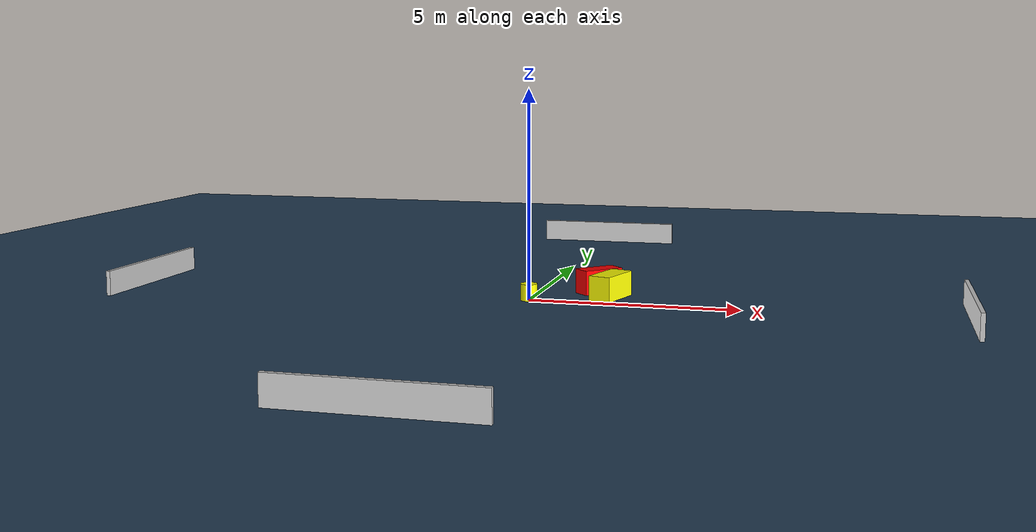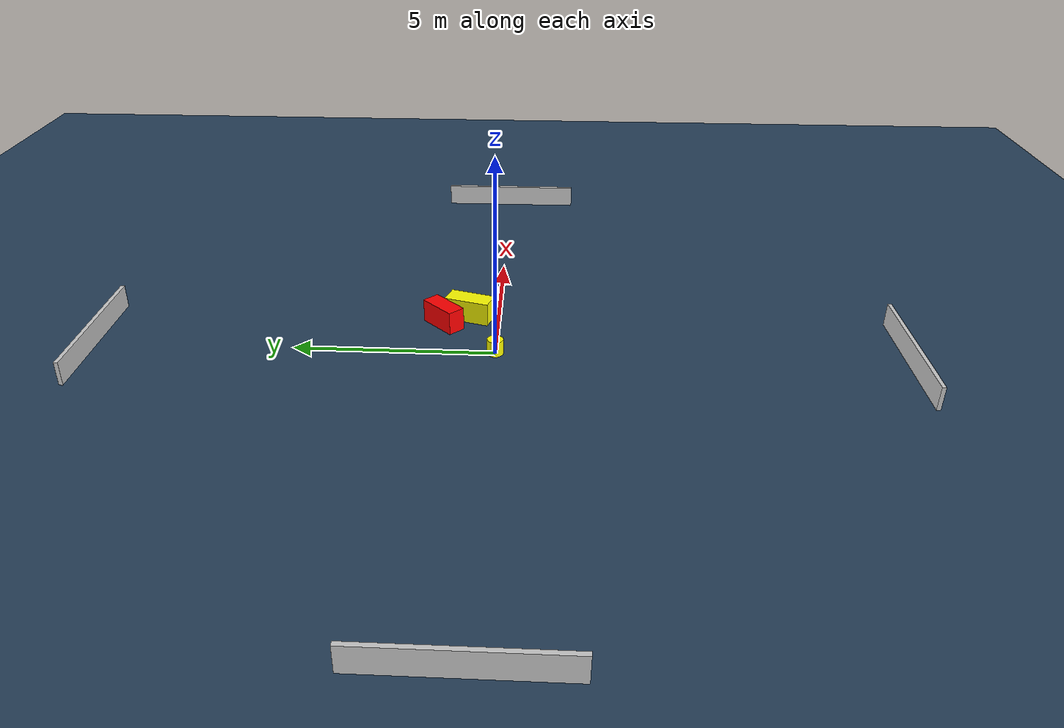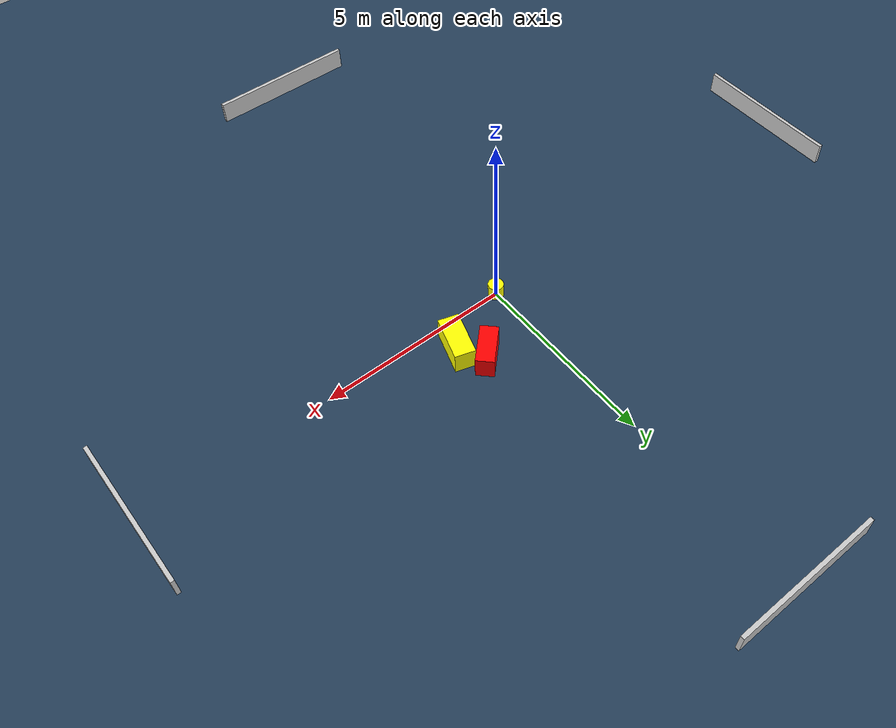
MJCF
<?xml version="1.0" ?>
<mujoco model="generated_environment">
  <option timestep="0.01" integrator="RK4" cone="elliptic"/>
  <default>
    <geom density="1"/>
  </default>
  <asset>
    <texture builtin="gradient" height="3072" name="skybox" rgb1="0.3 0.5 0.7" rgb2="0 0 0" type="skybox" width="512"/>
    <texture builtin="checker" height="300" name="groundplane" rgb1="0.2 0.3 0.4" rgb2="0.1 0.2 0.3" type="2d" width="300"/>
    <material name="groundplane" reflectance="0.2" texrepeat="5 5" texture="groundplane"/>
  </asset>
  <worldbody>
    <light dir="0 0 -1" directional="true" pos="0 0 1.5"/>
    <geom condim="3" friction="0.5 0.005 0.001" material="groundplane" name="floor" pos="0 0 0" size="0 0 0.05" type="plane"/>
    <body name="walls">
      <geom name="wall_1" condim="4" pos="-10.0 0.0 0.3" rgba="0.800000011920929 0.800000011920929 0.800000011920929 1.0" size="0.05 2.0 0.3" type="box"/>
      <geom name="wall_2" condim="4" pos="10.0 0.0 0.3" rgba="0.800000011920929 0.800000011920929 0.800000011920929 1.0" size="0.05 2.0 0.3" type="box"/>
      <geom name="wall_3" condim="4" pos="0.0 -10.0 0.3" rgba="0.800000011920929 0.800000011920929 0.800000011920929 1.0" size="2.0 0.05 0.3" type="box"/>
      <geom name="wall_4" condim="4" pos="0.0 10.0 0.3" rgba="0.800000011920929 0.800000011920929 0.800000011920929 1.0" size="2.0 0.05 0.3" type="box"/>
    </body>
    <body name="robot">
      <joint name="joint_x" type="slide" pos="0 0 0" axis="1 0 0"/>
      <joint name="joint_y" type="slide" pos="0 0 0" axis="0 1 0"/>
      <geom name="robot" type="cylinder" pos="0.0 0.0 0.2" size="0.2 0.2 0.0" mass="5.0" friction="1.0 0.005 0.0001" condim="4" rgba="1.0 1.0 0.0 1.0"/>
    </body>
    <body name="obstacle_1_movable">
      <geom name="obstacle_1_movable" condim="4" pos="1.8219216993260776 0.7577247126317299 0.3" euler="0 0 73.00697336953031" friction="0.0 0.005 0.001" rgba="1.0 1.0 0.0 1.0" size="0.5850558570435049 0.26776440286312997 0.3" type="box" mass="0.1"/>
      <joint type="free"/>
    </body>
    <body name="obstacle_2_static">
      <geom name="obstacle_2_static" condim="4" pos="1.4084641021512134 1.402430150200958 0.3" euler="0 0 134.8760375060455" friction="0.0 0.005 0.001" rgba="1.0 0.0 0.0 1.0" size="0.23248435956781444 0.5208852252424965 0.3" type="box"/>
    </body>
  </worldbody>
  <actuator>
    <motor name="actuator_x" joint="joint_x" gear="1" ctrlrange="-1 1"/>
    <motor name="actuator_y" joint="joint_y" gear="1" ctrlrange="-1 1"/>
  </actuator>
</mujoco>
